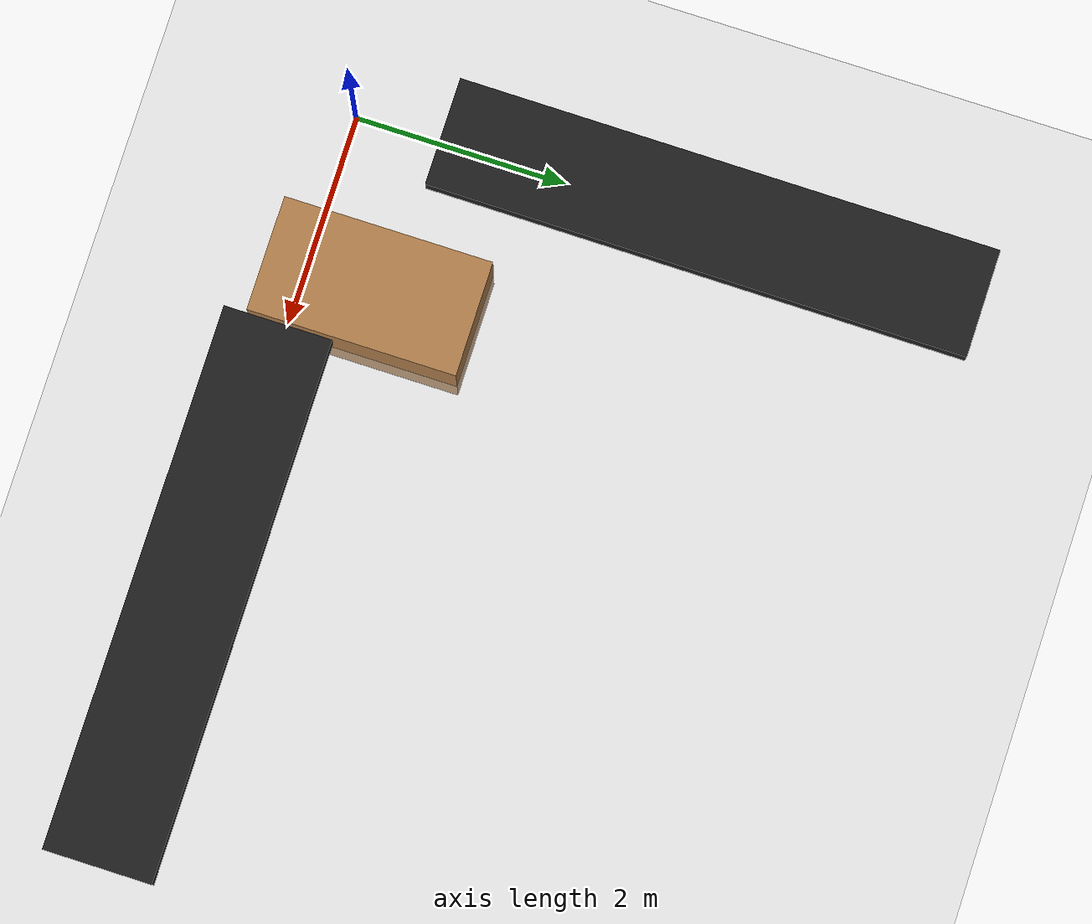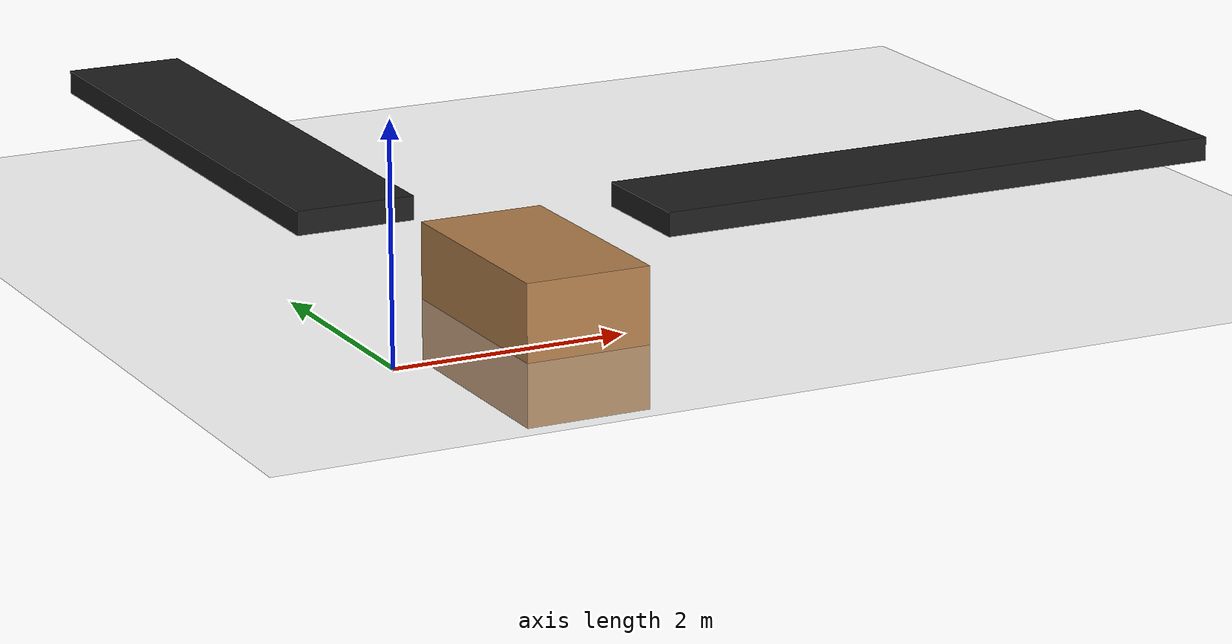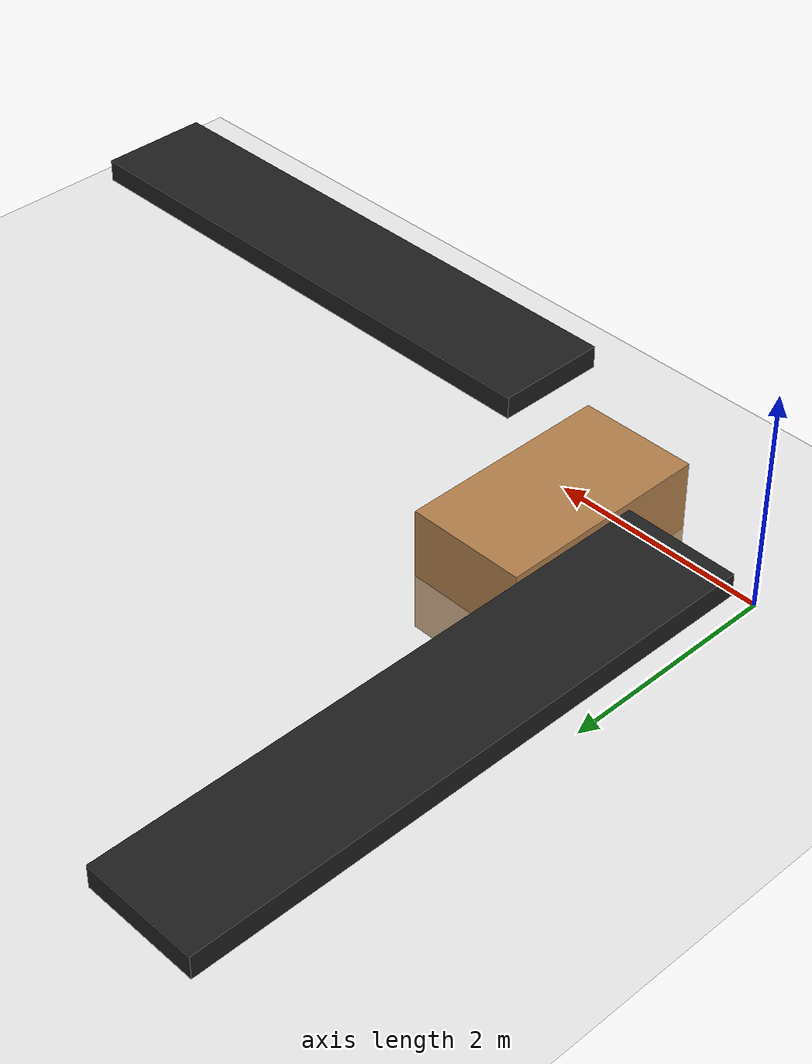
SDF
<sdf version="1.6">
 <world name="default">
  <light name="sun" type="directional">
   <pose>0 0 10 0 -0 0</pose>
   <diffuse>0.8 0.8 0.8 1</diffuse>
   <specular>0.2 0.2 0.2 1</specular>
   <attenuation>
    <range>1000</range>
    <constant>0.9</constant>
    <linear>0.01</linear>
    <quadratic>0.001</quadratic>
   </attenuation>
   <direction>-0.5 0.1 -0.9</direction>
  </light>
  <model name="ground_plane">
   <static>1</static>
   <link name="link">
    <collision name="collision">
     <geometry><plane><normal>0 0 1</normal><size>100 100</size></plane></geometry>
     <surface><friction><ode><mu>100</mu><mu2>50</mu2></ode></friction></surface>
    </collision>
    <visual name="visual">
     <cast_shadows>0</cast_shadows>
     <geometry><plane><normal>0 0 1</normal><size>100 100</size></plane></geometry>
     <material>
      <script><uri>file://media/materials/scripts/gazebo.material</uri><name>Gazebo/Grey</name></script>
     </material>
    </visual>
   </link>
  </model>
  <gravity>0 0 -9.8</gravity>
  <magnetic_field>6e-06 2.3e-05 -4.2e-05</magnetic_field>
  <atmosphere type="adiabatic"/>
  <physics name="default_physics" default="0" type="ode">
   <max_step_size>0.001</max_step_size>
   <real_time_factor>1</real_time_factor>
   <real_time_update_rate>1000</real_time_update_rate>
  </physics>
  <scene><ambient>0.4 0.4 0.4 1</ambient><background>0.7 0.7 0.7 1</background><shadows>1</shadows></scene>
  <audio><device>default</device></audio>
  <spherical_coordinates>
   <surface_model>EARTH_WGS84</surface_model>
   <latitude_deg>0</latitude_deg>
   <longitude_deg>0</longitude_deg>
   <elevation>0</elevation>
   <heading_deg>0</heading_deg>
  </spherical_coordinates>
  <model name="conveyor_belt">
   <link name="base_link">
    <inertial>
     <pose>0 0 1 0 -0 0</pose>
     <mass>1</mass>
     <inertia><ixx>1</ixx><ixy>0</ixy><ixz>0</ixz><iyy>1</iyy><iyz>0</iyz><izz>1</izz></inertia>
    </inertial>
    <visual name="base_link_visual">
     <pose>0 0 1 0 -0 0</pose>
     <geometry><box><size>5 1 0.2</size></box></geometry>
     <material>
      <script><name>Gazebo/FlatBlack</name><uri>file://media/materials/scripts/gazebo.material</uri></script>
     </material>
    </visual>
    <collision name="base_link_collision">
     <pose>0 0 1 0 -0 0</pose>
     <geometry><box><size>5 1 0.2</size></box></geometry>
     <surface>
      <friction>
       <ode><mu>0</mu><mu2>0</mu2><fdir1>0 0 0</fdir1><slip1>0</slip1><slip2>0</slip2></ode>
       <torsional>
        <coefficient>1</coefficient>
        <patch_radius>0</patch_radius>
        <surface_radius>0</surface_radius>
        <use_patch_radius>1</use_patch_radius>
        <ode><slip>0</slip></ode>
       </torsional>
      </friction>
      <bounce><restitution_coefficient>0</restitution_coefficient><threshold>1e+06</threshold></bounce>
      <contact>
       <collide_without_contact>0</collide_without_contact>
       <collide_without_contact_bitmask>1</collide_without_contact_bitmask>
       <collide_bitmask>1</collide_bitmask>
       <ode>
        <soft_cfm>0</soft_cfm>
        <soft_erp>0.2</soft_erp>
        <kp>1e+13</kp>
        <kd>1</kd>
        <max_vel>0.01</max_vel>
        <min_depth>0</min_depth>
       </ode>
       <bullet>
        <split_impulse>1</split_impulse>
        <split_impulse_penetration_threshold>-0.01</split_impulse_penetration_threshold>
        <soft_cfm>0</soft_cfm>
        <soft_erp>0.2</soft_erp>
        <kp>1e+13</kp>
        <kd>1</kd>
       </bullet>
      </contact>
     </surface>
    </collision>
   </link>
   <static>0</static>
   <pose>4.66497 0.026185 0 0 -0 0</pose>
  </model>
  <model name="conveyor_belt_clone">
   <link name="base_link">
    <inertial>
     <pose>0 0 1 0 -0 0</pose>
     <mass>1</mass>
     <inertia><ixx>1</ixx><ixy>0</ixy><ixz>0</ixz><iyy>1</iyy><iyz>0</iyz><izz>1</izz></inertia>
    </inertial>
    <visual name="base_link_visual">
     <pose>0 0 1 0 -0 0</pose>
     <geometry><box><size>5 1 0.2</size></box></geometry>
     <material>
      <script><name>Gazebo/FlatBlack</name><uri>file://media/materials/scripts/gazebo.material</uri></script>
     </material>
    </visual>
    <collision name="base_link_collision">
     <pose>0 0 1 0 -0 0</pose>
     <geometry><box><size>5 1 0.2</size></box></geometry>
     <surface>
      <friction>
       <ode><mu>0</mu><mu2>0</mu2><fdir1>0 0 0</fdir1><slip1>0</slip1><slip2>0</slip2></ode>
       <torsional>
        <coefficient>1</coefficient>
        <patch_radius>0</patch_radius>
        <surface_radius>0</surface_radius>
        <use_patch_radius>1</use_patch_radius>
        <ode><slip>0</slip></ode>
       </torsional>
      </friction>
      <bounce><restitution_coefficient>0</restitution_coefficient><threshold>1e+06</threshold></bounce>
      <contact>
       <collide_without_contact>0</collide_without_contact>
       <collide_without_contact_bitmask>1</collide_without_contact_bitmask>
       <collide_bitmask>1</collide_bitmask>
       <ode>
        <soft_cfm>0</soft_cfm>
        <soft_erp>0.2</soft_erp>
        <kp>1e+13</kp>
        <kd>1</kd>
        <max_vel>0.01</max_vel>
        <min_depth>0</min_depth>
       </ode>
       <bullet>
        <split_impulse>1</split_impulse>
        <split_impulse_penetration_threshold>-0.01</split_impulse_penetration_threshold>
        <soft_cfm>0</soft_cfm>
        <soft_erp>0.2</soft_erp>
        <kp>1e+13</kp>
        <kd>1</kd>
       </bullet>
      </contact>
     </surface>
    </collision>
   </link>
   <static>0</static>
   <pose>0.100386 3.37666 0 0 -0 1.56744</pose>
  </model>
  <model name="table_0">
   <link name="link">
    <pose>0 0 0.05 0 -0 0</pose>
    <inertial>
     <mass>5000.43</mass>
     <inertia><ixx>559.741</ixx><ixy>0</ixy><ixz>0</ixz><iyy>273.857</iyy><iyz>0</iyz><izz>533.237</izz></inertia>
    </inertial>
    <visual name="visual">
     <geometry><box><size>1.07451 1.95536 1.18406</size></box></geometry>
     <material>
      <script><uri>file://media/materials/scripts/gazebo.material</uri><name>Gazebo/Wood</name></script>
     </material>
    </visual>
    <collision name="collision">
     <geometry><box><size>1.07451 1.95536 1.18406</size></box></geometry>
     <surface>
      <friction>
       <ode><mu>1</mu><mu2>1</mu2><fdir1>0 0 0</fdir1><slip1>0</slip1><slip2>0</slip2></ode>
       <torsional>
        <coefficient>1</coefficient>
        <patch_radius>0</patch_radius>
        <surface_radius>0.01</surface_radius>
        <use_patch_radius>0</use_patch_radius>
        <ode><slip>0</slip></ode>
       </torsional>
      </friction>
      <bounce><restitution_coefficient>0</restitution_coefficient><threshold>1e+06</threshold></bounce>
      <contact>
       <collide_without_contact>0</collide_without_contact>
       <collide_without_contact_bitmask>1</collide_without_contact_bitmask>
       <collide_bitmask>1</collide_bitmask>
       <ode>
        <soft_cfm>0</soft_cfm>
        <soft_erp>0.2</soft_erp>
        <kp>100000</kp>
        <kd>100</kd>
        <max_vel>100</max_vel>
        <min_depth>0.001</min_depth>
       </ode>
       <bullet>
        <split_impulse>1</split_impulse>
        <split_impulse_penetration_threshold>-0.01</split_impulse_penetration_threshold>
        <soft_cfm>0</soft_cfm>
        <soft_erp>0.2</soft_erp>
        <kp>100000</kp>
        <kd>100</kd>
       </bullet>
      </contact>
     </surface>
    </collision>
   </link>
   <static>0</static>
   <pose>1.53548 0.65178 -0.001013 0 -0 0</pose>
  </model>
 </world>
</sdf>
